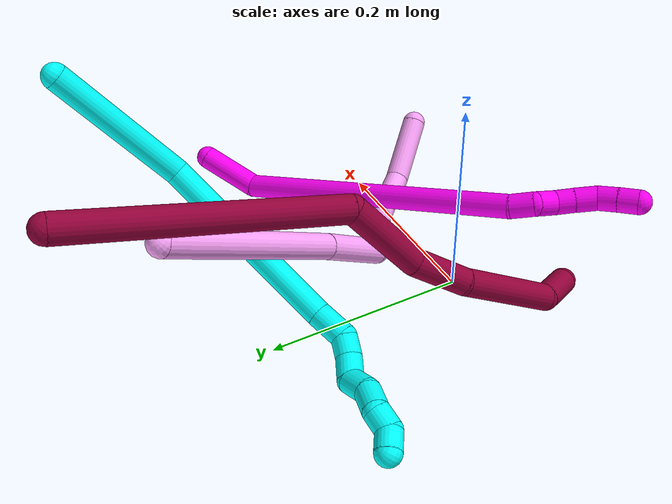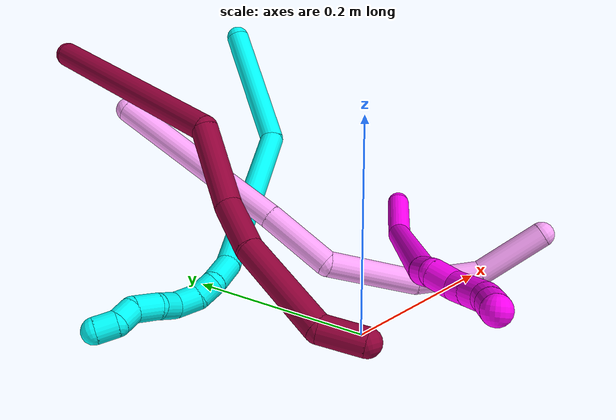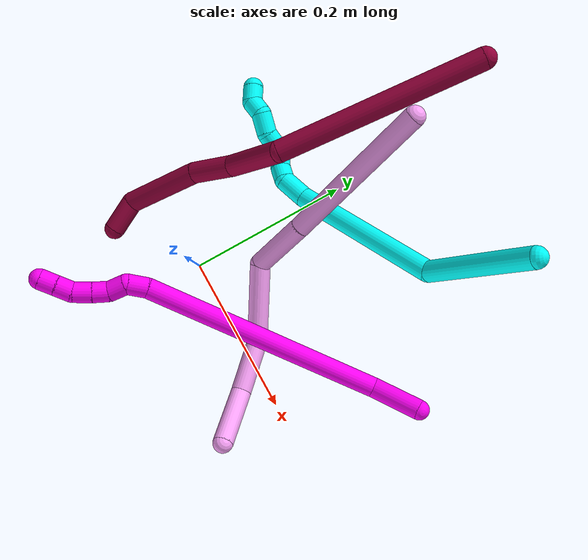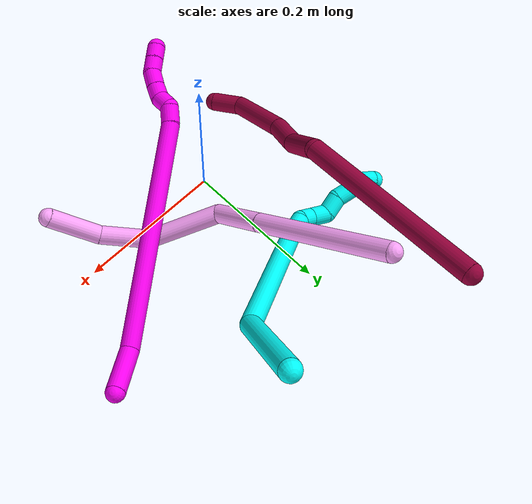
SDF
<sdf version="1.7">
 <world name="default">
  <model name="3">
   <static>0</static>
   <link name="3">
    <collision name="collision-cylinder-e_1_1_4">
     <pose>0.008273 0.009005 -0.068783 -3.01141 0.118693 -1.47828</pose>
     <geometry><cylinder><radius>0.0125</radius><length>0.139723</length></cylinder></geometry>
     <surface>
      <friction><ode><mu>1.16</mu><mu2>1.16</mu2><slip1>0</slip1><slip2>0</slip2></ode></friction>
      <contact><ode><kp>1e+06</kp><kd>1</kd><max_vel>0</max_vel><min_depth>0.001</min_depth></ode></contact>
     </surface>
    </collision>
    <visual name="visual-cylinder-e_1_1_4">
     <pose>0.008273 0.009005 -0.068783 -3.01141 0.118693 -1.47828</pose>
     <geometry><cylinder><radius>0.0125</radius><length>0.139723</length></cylinder></geometry>
     <material><ambient>0.003922 1 0.996078 1</ambient></material>
    </visual>
    <collision name="collision-cylinder-e_2_4_5">
     <pose>-0.031273 0.033772 -0.21838 -2.94898 -0.526154 2.45278</pose>
     <geometry><cylinder><radius>0.0125</radius><length>0.190429</length></cylinder></geometry>
     <surface>
      <friction><ode><mu>1.16</mu><mu2>1.16</mu2><slip1>0</slip1><slip2>0</slip2></ode></friction>
      <contact><ode><kp>1e+06</kp><kd>1</kd><max_vel>0</max_vel><min_depth>0.001</min_depth></ode></contact>
     </surface>
    </collision>
    <visual name="visual-cylinder-e_2_4_5">
     <pose>-0.031273 0.033772 -0.21838 -2.94898 -0.526154 2.45278</pose>
     <geometry><cylinder><radius>0.0125</radius><length>0.190429</length></cylinder></geometry>
     <material><ambient>0.003922 1 0.996078 1</ambient></material>
    </visual>
    <collision name="collision-cylinder-e_3_5_6">
     <pose>-0.091221 0.050382 -0.310335 -3.06555 -0.826438 2.96851</pose>
     <geometry><cylinder><radius>0.0125</radius><length>0.032986</length></cylinder></geometry>
     <surface>
      <friction><ode><mu>1.16</mu><mu2>1.16</mu2><slip1>0</slip1><slip2>0</slip2></ode></friction>
      <contact><ode><kp>1e+06</kp><kd>1</kd><max_vel>0</max_vel><min_depth>0.001</min_depth></ode></contact>
     </surface>
    </collision>
    <visual name="visual-cylinder-e_3_5_6">
     <pose>-0.091221 0.050382 -0.310335 -3.06555 -0.826438 2.96851</pose>
     <geometry><cylinder><radius>0.0125</radius><length>0.032986</length></cylinder></geometry>
     <material><ambient>0.003922 1 0.996078 1</ambient></material>
    </visual>
    <collision name="collision-cylinder-e_4_6_7">
     <pose>-0.109922 0.057169 -0.326323 -2.25522 -0.708622 1.324</pose>
     <geometry><cylinder><radius>0.0125</radius><length>0.020191</length></cylinder></geometry>
     <surface>
      <friction><ode><mu>1.16</mu><mu2>1.16</mu2><slip1>0</slip1><slip2>0</slip2></ode></friction>
      <contact><ode><kp>1e+06</kp><kd>1</kd><max_vel>0</max_vel><min_depth>0.001</min_depth></ode></contact>
     </surface>
    </collision>
    <visual name="visual-cylinder-e_4_6_7">
     <pose>-0.109922 0.057169 -0.326323 -2.25522 -0.708622 1.324</pose>
     <geometry><cylinder><radius>0.0125</radius><length>0.020191</length></cylinder></geometry>
     <material><ambient>0.003922 1 0.996078 1</ambient></material>
    </visual>
    <collision name="collision-cylinder-e_5_7_8">
     <pose>-0.126498 0.069593 -0.333157 -1.8683 -0.975064 1.24429</pose>
     <geometry><cylinder><radius>0.0125</radius><length>0.024176</length></cylinder></geometry>
     <surface>
      <friction><ode><mu>1.16</mu><mu2>1.16</mu2><slip1>0</slip1><slip2>0</slip2></ode></friction>
      <contact><ode><kp>1e+06</kp><kd>1</kd><max_vel>0</max_vel><min_depth>0.001</min_depth></ode></contact>
     </surface>
    </collision>
    <visual name="visual-cylinder-e_5_7_8">
     <pose>-0.126498 0.069593 -0.333157 -1.8683 -0.975064 1.24429</pose>
     <geometry><cylinder><radius>0.0125</radius><length>0.024176</length></cylinder></geometry>
     <material><ambient>0.003922 1 0.996078 1</ambient></material>
    </visual>
    <collision name="collision-cylinder-e_6_8_9">
     <pose>-0.14864 0.073526 -0.33824 2.45206 -1.25162 -2.21928</pose>
     <geometry><cylinder><radius>0.0125</radius><length>0.025565</length></cylinder></geometry>
     <surface>
      <friction><ode><mu>1.16</mu><mu2>1.16</mu2><slip1>0</slip1><slip2>0</slip2></ode></friction>
      <contact><ode><kp>1e+06</kp><kd>1</kd><max_vel>0</max_vel><min_depth>0.001</min_depth></ode></contact>
     </surface>
    </collision>
    <visual name="visual-cylinder-e_6_8_9">
     <pose>-0.14864 0.073526 -0.33824 2.45206 -1.25162 -2.21928</pose>
     <geometry><cylinder><radius>0.0125</radius><length>0.025565</length></cylinder></geometry>
     <material><ambient>0.003922 1 0.996078 1</ambient></material>
    </visual>
    <collision name="collision-cylinder-e_7_9_10">
     <pose>-0.173504 0.073571 -0.342838 -2.09556 -1.33925 1.88262</pose>
     <geometry><cylinder><radius>0.0125</radius><length>0.026151</length></cylinder></geometry>
     <surface>
      <friction><ode><mu>1.16</mu><mu2>1.16</mu2><slip1>0</slip1><slip2>0</slip2></ode></friction>
      <contact><ode><kp>1e+06</kp><kd>1</kd><max_vel>0</max_vel><min_depth>0.001</min_depth></ode></contact>
     </surface>
    </collision>
    <visual name="visual-cylinder-e_7_9_10">
     <pose>-0.173504 0.073571 -0.342838 -2.09556 -1.33925 1.88262</pose>
     <geometry><cylinder><radius>0.0125</radius><length>0.026151</length></cylinder></geometry>
     <material><ambient>0.003922 1 0.996078 1</ambient></material>
    </visual>
    <collision name="collision-cylinder-e_8_10_11">
     <pose>-0.193824 0.078748 -0.350456 -2.74228 -0.852582 2.30327</pose>
     <geometry><cylinder><radius>0.0125</radius><length>0.02017</length></cylinder></geometry>
     <surface>
      <friction><ode><mu>1.16</mu><mu2>1.16</mu2><slip1>0</slip1><slip2>0</slip2></ode></friction>
      <contact><ode><kp>1e+06</kp><kd>1</kd><max_vel>0</max_vel><min_depth>0.001</min_depth></ode></contact>
     </surface>
    </collision>
    <visual name="visual-cylinder-e_8_10_11">
     <pose>-0.193824 0.078748 -0.350456 -2.74228 -0.852582 2.30327</pose>
     <geometry><cylinder><radius>0.0125</radius><length>0.02017</length></cylinder></geometry>
     <material><ambient>0.003922 1 0.996078 1</ambient></material>
    </visual>
    <collision name="collision-cylinder-e_9_11_2">
     <pose>-0.209474 0.087702 -0.357382 -1.6975 -0.89755 1.00073</pose>
     <geometry><cylinder><radius>0.0125</radius><length>0.02061</length></cylinder></geometry>
     <surface>
      <friction><ode><mu>1.16</mu><mu2>1.16</mu2><slip1>0</slip1><slip2>0</slip2></ode></friction>
      <contact><ode><kp>1e+06</kp><kd>1</kd><max_vel>0</max_vel><min_depth>0.001</min_depth></ode></contact>
     </surface>
    </collision>
    <visual name="visual-cylinder-e_9_11_2">
     <pose>-0.209474 0.087702 -0.357382 -1.6975 -0.89755 1.00073</pose>
     <geometry><cylinder><radius>0.0125</radius><length>0.02061</length></cylinder></geometry>
     <material><ambient>0.003922 1 0.996078 1</ambient></material>
    </visual>
    <collision name="collision-sphere-2">
     <pose>-0.21753 0.094076 -0.358194 0 -0 0</pose>
     <geometry><sphere><radius>0.0125</radius></sphere></geometry>
     <surface>
      <friction><ode><mu>1.16</mu><mu2>1.16</mu2><slip1>0</slip1><slip2>0</slip2></ode></friction>
      <contact><ode><kp>1e+06</kp><kd>1</kd><max_vel>0</max_vel><min_depth>0.001</min_depth></ode></contact>
     </surface>
    </collision>
    <visual name="visual-sphere-2">
     <pose>-0.21753 0.094076 -0.358194 0 -0 0</pose>
     <geometry><sphere><radius>0.0125</radius></sphere></geometry>
     <material><ambient>0.003922 1 0.996078 1</ambient></material>
    </visual>
    <collision name="collision-sphere-11">
     <pose>-0.201418 0.081328 -0.35657 0 -0 0</pose>
     <geometry><sphere><radius>0.0125</radius></sphere></geometry>
     <surface>
      <friction><ode><mu>1.16</mu><mu2>1.16</mu2><slip1>0</slip1><slip2>0</slip2></ode></friction>
      <contact><ode><kp>1e+06</kp><kd>1</kd><max_vel>0</max_vel><min_depth>0.001</min_depth></ode></contact>
     </surface>
    </collision>
    <visual name="visual-sphere-11">
     <pose>-0.201418 0.081328 -0.35657 0 -0 0</pose>
     <geometry><sphere><radius>0.0125</radius></sphere></geometry>
     <material><ambient>0.003922 1 0.996078 1</ambient></material>
    </visual>
    <collision name="collision-sphere-10">
     <pose>-0.18623 0.076168 -0.344341 0 -0 0</pose>
     <geometry><sphere><radius>0.0125</radius></sphere></geometry>
     <surface>
      <friction><ode><mu>1.16</mu><mu2>1.16</mu2><slip1>0</slip1><slip2>0</slip2></ode></friction>
      <contact><ode><kp>1e+06</kp><kd>1</kd><max_vel>0</max_vel><min_depth>0.001</min_depth></ode></contact>
     </surface>
    </collision>
    <visual name="visual-sphere-10">
     <pose>-0.18623 0.076168 -0.344341 0 -0 0</pose>
     <geometry><sphere><radius>0.0125</radius></sphere></geometry>
     <material><ambient>0.003922 1 0.996078 1</ambient></material>
    </visual>
    <collision name="collision-sphere-9">
     <pose>-0.160777 0.070974 -0.341335 0 -0 0</pose>
     <geometry><sphere><radius>0.0125</radius></sphere></geometry>
     <surface>
      <friction><ode><mu>1.16</mu><mu2>1.16</mu2><slip1>0</slip1><slip2>0</slip2></ode></friction>
      <contact><ode><kp>1e+06</kp><kd>1</kd><max_vel>0</max_vel><min_depth>0.001</min_depth></ode></contact>
     </surface>
    </collision>
    <visual name="visual-sphere-9">
     <pose>-0.160777 0.070974 -0.341335 0 -0 0</pose>
     <geometry><sphere><radius>0.0125</radius></sphere></geometry>
     <material><ambient>0.003922 1 0.996078 1</ambient></material>
    </visual>
    <collision name="collision-sphere-4">
     <pose>0.016545 0.018011 -0.137566 0 -0 0</pose>
     <geometry><sphere><radius>0.0125</radius></sphere></geometry>
     <surface>
      <friction><ode><mu>1.16</mu><mu2>1.16</mu2><slip1>0</slip1><slip2>0</slip2></ode></friction>
      <contact><ode><kp>1e+06</kp><kd>1</kd><max_vel>0</max_vel><min_depth>0.001</min_depth></ode></contact>
     </surface>
    </collision>
    <visual name="visual-sphere-4">
     <pose>0.016545 0.018011 -0.137566 0 -0 0</pose>
     <geometry><sphere><radius>0.0125</radius></sphere></geometry>
     <material><ambient>0.003922 1 0.996078 1</ambient></material>
    </visual>
    <collision name="collision-sphere-1">
     <geometry><sphere><radius>0.0125</radius></sphere></geometry>
     <surface>
      <friction><ode><mu>1.16</mu><mu2>1.16</mu2><slip1>0</slip1><slip2>0</slip2></ode></friction>
      <contact><ode><kp>1e+06</kp><kd>1</kd><max_vel>0</max_vel><min_depth>0.001</min_depth></ode></contact>
     </surface>
    </collision>
    <visual name="visual-sphere-1">
     <geometry><sphere><radius>0.0125</radius></sphere></geometry>
     <material><ambient>0.003922 1 0.996078 1</ambient></material>
    </visual>
    <collision name="collision-sphere-8">
     <pose>-0.136503 0.076078 -0.335145 0 -0 0</pose>
     <geometry><sphere><radius>0.0125</radius></sphere></geometry>
     <surface>
      <friction><ode><mu>1.16</mu><mu2>1.16</mu2><slip1>0</slip1><slip2>0</slip2></ode></friction>
      <contact><ode><kp>1e+06</kp><kd>1</kd><max_vel>0</max_vel><min_depth>0.001</min_depth></ode></contact>
     </surface>
    </collision>
    <visual name="visual-sphere-8">
     <pose>-0.136503 0.076078 -0.335145 0 -0 0</pose>
     <geometry><sphere><radius>0.0125</radius></sphere></geometry>
     <material><ambient>0.003922 1 0.996078 1</ambient></material>
    </visual>
    <collision name="collision-sphere-5">
     <pose>-0.07909 0.049533 -0.299194 0 -0 0</pose>
     <geometry><sphere><radius>0.0125</radius></sphere></geometry>
     <surface>
      <friction><ode><mu>1.16</mu><mu2>1.16</mu2><slip1>0</slip1><slip2>0</slip2></ode></friction>
      <contact><ode><kp>1e+06</kp><kd>1</kd><max_vel>0</max_vel><min_depth>0.001</min_depth></ode></contact>
     </surface>
    </collision>
    <visual name="visual-sphere-5">
     <pose>-0.07909 0.049533 -0.299194 0 -0 0</pose>
     <geometry><sphere><radius>0.0125</radius></sphere></geometry>
     <material><ambient>0.003922 1 0.996078 1</ambient></material>
    </visual>
    <collision name="collision-sphere-6">
     <pose>-0.103352 0.051231 -0.321477 0 -0 0</pose>
     <geometry><sphere><radius>0.0125</radius></sphere></geometry>
     <surface>
      <friction><ode><mu>1.16</mu><mu2>1.16</mu2><slip1>0</slip1><slip2>0</slip2></ode></friction>
      <contact><ode><kp>1e+06</kp><kd>1</kd><max_vel>0</max_vel><min_depth>0.001</min_depth></ode></contact>
     </surface>
    </collision>
    <visual name="visual-sphere-6">
     <pose>-0.103352 0.051231 -0.321477 0 -0 0</pose>
     <geometry><sphere><radius>0.0125</radius></sphere></geometry>
     <material><ambient>0.003922 1 0.996078 1</ambient></material>
    </visual>
    <collision name="collision-sphere-7">
     <pose>-0.116492 0.063108 -0.331169 0 -0 0</pose>
     <geometry><sphere><radius>0.0125</radius></sphere></geometry>
     <surface>
      <friction><ode><mu>1.16</mu><mu2>1.16</mu2><slip1>0</slip1><slip2>0</slip2></ode></friction>
      <contact><ode><kp>1e+06</kp><kd>1</kd><max_vel>0</max_vel><min_depth>0.001</min_depth></ode></contact>
     </surface>
    </collision>
    <visual name="visual-sphere-7">
     <pose>-0.116492 0.063108 -0.331169 0 -0 0</pose>
     <geometry><sphere><radius>0.0125</radius></sphere></geometry>
     <material><ambient>0.003922 1 0.996078 1</ambient></material>
    </visual>
    <inertial>
     <pose>-0.0593 0.038775 -0.216246 0 -0 0</pose>
     <mass>0.5</mass>
     <inertia>
      <ixx>-0.000293</ixx>
      <ixy>0</ixy>
      <ixz>0</ixz>
      <iyy>0.000574</iyy>
      <iyz>0</iyz>
      <izz>0.00012</izz>
     </inertia>
    </inertial>
   </link>
   <pose>0.176592 0.310527 0.232691 -0.819703 0.345943 -0.172584</pose>
  </model>
  <model name="4">
   <static>0</static>
   <link name="4">
    <collision name="collision-cylinder-e_1_1_4">
     <pose>0.006502 -0.042603 -0.08413 2.67284 0.068844 0.286471</pose>
     <geometry><cylinder><radius>0.0125</radius><length>0.189052</length></cylinder></geometry>
     <surface>
      <friction><ode><mu>1.16</mu><mu2>1.16</mu2><slip1>0</slip1><slip2>0</slip2></ode></friction>
      <contact><ode><kp>1e+06</kp><kd>1</kd><max_vel>0</max_vel><min_depth>0.001</min_depth></ode></contact>
     </surface>
    </collision>
    <visual name="visual-cylinder-e_1_1_4">
     <pose>0.006502 -0.042603 -0.08413 2.67284 0.068844 0.286471</pose>
     <geometry><cylinder><radius>0.0125</radius><length>0.189052</length></cylinder></geometry>
     <material><ambient>1 0.65098 0.996078 1</ambient></material>
    </visual>
    <collision name="collision-cylinder-e_2_4_5">
     <pose>0.014242 -0.10056 -0.201349 2.70715 0.033899 0.153309</pose>
     <geometry><cylinder><radius>0.0125</radius><length>0.072997</length></cylinder></geometry>
     <surface>
      <friction><ode><mu>1.16</mu><mu2>1.16</mu2><slip1>0</slip1><slip2>0</slip2></ode></friction>
      <contact><ode><kp>1e+06</kp><kd>1</kd><max_vel>0</max_vel><min_depth>0.001</min_depth></ode></contact>
     </surface>
    </collision>
    <visual name="visual-cylinder-e_2_4_5">
     <pose>0.014242 -0.10056 -0.201349 2.70715 0.033899 0.153309</pose>
     <geometry><cylinder><radius>0.0125</radius><length>0.072997</length></cylinder></geometry>
     <material><ambient>1 0.65098 0.996078 1</ambient></material>
    </visual>
    <collision name="collision-cylinder-e_3_5_6">
     <pose>0.051663 -0.128394 -0.266616 2.77161 0.809017 2.31745</pose>
     <geometry><cylinder><radius>0.0125</radius><length>0.100011</length></cylinder></geometry>
     <surface>
      <friction><ode><mu>1.16</mu><mu2>1.16</mu2><slip1>0</slip1><slip2>0</slip2></ode></friction>
      <contact><ode><kp>1e+06</kp><kd>1</kd><max_vel>0</max_vel><min_depth>0.001</min_depth></ode></contact>
     </surface>
    </collision>
    <visual name="visual-cylinder-e_3_5_6">
     <pose>0.051663 -0.128394 -0.266616 2.77161 0.809017 2.31745</pose>
     <geometry><cylinder><radius>0.0125</radius><length>0.100011</length></cylinder></geometry>
     <material><ambient>1 0.65098 0.996078 1</ambient></material>
    </visual>
    <collision name="collision-cylinder-e_4_6_7">
     <pose>0.108528 -0.162781 -0.311581 2.0991 0.684023 1.10996</pose>
     <geometry><cylinder><radius>0.0125</radius><length>0.065454</length></cylinder></geometry>
     <surface>
      <friction><ode><mu>1.16</mu><mu2>1.16</mu2><slip1>0</slip1><slip2>0</slip2></ode></friction>
      <contact><ode><kp>1e+06</kp><kd>1</kd><max_vel>0</max_vel><min_depth>0.001</min_depth></ode></contact>
     </surface>
    </collision>
    <visual name="visual-cylinder-e_4_6_7">
     <pose>0.108528 -0.162781 -0.311581 2.0991 0.684023 1.10996</pose>
     <geometry><cylinder><radius>0.0125</radius><length>0.065454</length></cylinder></geometry>
     <material><ambient>1 0.65098 0.996078 1</ambient></material>
    </visual>
    <collision name="collision-cylinder-e_5_7_2">
     <pose>0.150074 -0.214273 -0.322669 1.51348 0.613454 0.581209</pose>
     <geometry><cylinder><radius>0.0125</radius><length>0.072486</length></cylinder></geometry>
     <surface>
      <friction><ode><mu>1.16</mu><mu2>1.16</mu2><slip1>0</slip1><slip2>0</slip2></ode></friction>
      <contact><ode><kp>1e+06</kp><kd>1</kd><max_vel>0</max_vel><min_depth>0.001</min_depth></ode></contact>
     </surface>
    </collision>
    <visual name="visual-cylinder-e_5_7_2">
     <pose>0.150074 -0.214273 -0.322669 1.51348 0.613454 0.581209</pose>
     <geometry><cylinder><radius>0.0125</radius><length>0.072486</length></cylinder></geometry>
     <material><ambient>1 0.65098 0.996078 1</ambient></material>
    </visual>
    <collision name="collision-sphere-2">
     <pose>0.170939 -0.243859 -0.320971 0 -0 0</pose>
     <geometry><sphere><radius>0.0125</radius></sphere></geometry>
     <surface>
      <friction><ode><mu>1.16</mu><mu2>1.16</mu2><slip1>0</slip1><slip2>0</slip2></ode></friction>
      <contact><ode><kp>1e+06</kp><kd>1</kd><max_vel>0</max_vel><min_depth>0.001</min_depth></ode></contact>
     </surface>
    </collision>
    <visual name="visual-sphere-2">
     <pose>0.170939 -0.243859 -0.320971 0 -0 0</pose>
     <geometry><sphere><radius>0.0125</radius></sphere></geometry>
     <material><ambient>1 0.65098 0.996078 1</ambient></material>
    </visual>
    <collision name="collision-sphere-7">
     <pose>0.129209 -0.184688 -0.324366 0 -0 0</pose>
     <geometry><sphere><radius>0.0125</radius></sphere></geometry>
     <surface>
      <friction><ode><mu>1.16</mu><mu2>1.16</mu2><slip1>0</slip1><slip2>0</slip2></ode></friction>
      <contact><ode><kp>1e+06</kp><kd>1</kd><max_vel>0</max_vel><min_depth>0.001</min_depth></ode></contact>
     </surface>
    </collision>
    <visual name="visual-sphere-7">
     <pose>0.129209 -0.184688 -0.324366 0 -0 0</pose>
     <geometry><sphere><radius>0.0125</radius></sphere></geometry>
     <material><ambient>1 0.65098 0.996078 1</ambient></material>
    </visual>
    <collision name="collision-sphere-6">
     <pose>0.087848 -0.140874 -0.298795 0 -0 0</pose>
     <geometry><sphere><radius>0.0125</radius></sphere></geometry>
     <surface>
      <friction><ode><mu>1.16</mu><mu2>1.16</mu2><slip1>0</slip1><slip2>0</slip2></ode></friction>
      <contact><ode><kp>1e+06</kp><kd>1</kd><max_vel>0</max_vel><min_depth>0.001</min_depth></ode></contact>
     </surface>
    </collision>
    <visual name="visual-sphere-6">
     <pose>0.087848 -0.140874 -0.298795 0 -0 0</pose>
     <geometry><sphere><radius>0.0125</radius></sphere></geometry>
     <material><ambient>1 0.65098 0.996078 1</ambient></material>
    </visual>
    <collision name="collision-sphere-5">
     <pose>0.015479 -0.115914 -0.234437 0 -0 0</pose>
     <geometry><sphere><radius>0.0125</radius></sphere></geometry>
     <surface>
      <friction><ode><mu>1.16</mu><mu2>1.16</mu2><slip1>0</slip1><slip2>0</slip2></ode></friction>
      <contact><ode><kp>1e+06</kp><kd>1</kd><max_vel>0</max_vel><min_depth>0.001</min_depth></ode></contact>
     </surface>
    </collision>
    <visual name="visual-sphere-5">
     <pose>0.015479 -0.115914 -0.234437 0 -0 0</pose>
     <geometry><sphere><radius>0.0125</radius></sphere></geometry>
     <material><ambient>1 0.65098 0.996078 1</ambient></material>
    </visual>
    <collision name="collision-sphere-1">
     <geometry><sphere><radius>0.0125</radius></sphere></geometry>
     <surface>
      <friction><ode><mu>1.16</mu><mu2>1.16</mu2><slip1>0</slip1><slip2>0</slip2></ode></friction>
      <contact><ode><kp>1e+06</kp><kd>1</kd><max_vel>0</max_vel><min_depth>0.001</min_depth></ode></contact>
     </surface>
    </collision>
    <visual name="visual-sphere-1">
     <geometry><sphere><radius>0.0125</radius></sphere></geometry>
     <material><ambient>1 0.65098 0.996078 1</ambient></material>
    </visual>
    <collision name="collision-sphere-4">
     <pose>0.013005 -0.085206 -0.16826 0 -0 0</pose>
     <geometry><sphere><radius>0.0125</radius></sphere></geometry>
     <surface>
      <friction><ode><mu>1.16</mu><mu2>1.16</mu2><slip1>0</slip1><slip2>0</slip2></ode></friction>
      <contact><ode><kp>1e+06</kp><kd>1</kd><max_vel>0</max_vel><min_depth>0.001</min_depth></ode></contact>
     </surface>
    </collision>
    <visual name="visual-sphere-4">
     <pose>0.013005 -0.085206 -0.16826 0 -0 0</pose>
     <geometry><sphere><radius>0.0125</radius></sphere></geometry>
     <material><ambient>1 0.65098 0.996078 1</ambient></material>
    </visual>
    <inertial>
     <pose>0.050835 -0.108844 -0.202101 0 -0 0</pose>
     <mass>0.5</mass>
     <inertia>
      <ixx>0.00083</ixx>
      <ixy>0</ixy>
      <ixz>0</ixz>
      <iyy>-0.000198</iyy>
      <iyz>0</iyz>
      <izz>0.000174</izz>
     </inertia>
    </inertial>
   </link>
   <pose>-0.013932 0.288502 0.174155 -0.565318 -0.141741 0.075194</pose>
  </model>
  <model name="8">
   <static>0</static>
   <link name="8">
    <collision name="collision-cylinder-e_1_1_4">
     <pose>-0.00323 -0.080974 -0.084131 2.37532 -0.027651 -0.06858</pose>
     <geometry><cylinder><radius>0.0125</radius><length>0.233626</length></cylinder></geometry>
     <surface>
      <friction><ode><mu>1.16</mu><mu2>1.16</mu2><slip1>0</slip1><slip2>0</slip2></ode></friction>
      <contact><ode><kp>1e+06</kp><kd>1</kd><max_vel>0</max_vel><min_depth>0.001</min_depth></ode></contact>
     </surface>
    </collision>
    <visual name="visual-cylinder-e_1_1_4">
     <pose>-0.00323 -0.080974 -0.084131 2.37532 -0.027651 -0.06858</pose>
     <geometry><cylinder><radius>0.0125</radius><length>0.233626</length></cylinder></geometry>
     <material><ambient>0.584314 0 0.227451 1</ambient></material>
    </visual>
    <collision name="collision-cylinder-e_2_4_5">
     <pose>-0.009811 -0.164855 -0.207667 3.06794 -0.08463 -1.70943</pose>
     <geometry><cylinder><radius>0.0125</radius><length>0.079306</length></cylinder></geometry>
     <surface>
      <friction><ode><mu>1.16</mu><mu2>1.16</mu2><slip1>0</slip1><slip2>0</slip2></ode></friction>
      <contact><ode><kp>1e+06</kp><kd>1</kd><max_vel>0</max_vel><min_depth>0.001</min_depth></ode></contact>
     </surface>
    </collision>
    <visual name="visual-cylinder-e_2_4_5">
     <pose>-0.009811 -0.164855 -0.207667 3.06794 -0.08463 -1.70943</pose>
     <geometry><cylinder><radius>0.0125</radius><length>0.079306</length></cylinder></geometry>
     <material><ambient>0.584314 0 0.227451 1</ambient></material>
    </visual>
    <collision name="collision-cylinder-e_3_5_6">
     <pose>-0.018931 -0.177335 -0.270658 2.75605 -0.222824 -1.04089</pose>
     <geometry><cylinder><radius>0.0125</radius><length>0.052202</length></cylinder></geometry>
     <surface>
      <friction><ode><mu>1.16</mu><mu2>1.16</mu2><slip1>0</slip1><slip2>0</slip2></ode></friction>
      <contact><ode><kp>1e+06</kp><kd>1</kd><max_vel>0</max_vel><min_depth>0.001</min_depth></ode></contact>
     </surface>
    </collision>
    <visual name="visual-cylinder-e_3_5_6">
     <pose>-0.018931 -0.177335 -0.270658 2.75605 -0.222824 -1.04089</pose>
     <geometry><cylinder><radius>0.0125</radius><length>0.052202</length></cylinder></geometry>
     <material><ambient>0.584314 0 0.227451 1</ambient></material>
    </visual>
    <collision name="collision-cylinder-e_4_6_7">
     <pose>-0.025042 -0.209199 -0.336434 2.6555 -0.007197 -0.029023</pose>
     <geometry><cylinder><radius>0.0125</radius><length>0.095434</length></cylinder></geometry>
     <surface>
      <friction><ode><mu>1.16</mu><mu2>1.16</mu2><slip1>0</slip1><slip2>0</slip2></ode></friction>
      <contact><ode><kp>1e+06</kp><kd>1</kd><max_vel>0</max_vel><min_depth>0.001</min_depth></ode></contact>
     </surface>
    </collision>
    <visual name="visual-cylinder-e_4_6_7">
     <pose>-0.025042 -0.209199 -0.336434 2.6555 -0.007197 -0.029023</pose>
     <geometry><cylinder><radius>0.0125</radius><length>0.095434</length></cylinder></geometry>
     <material><ambient>0.584314 0 0.227451 1</ambient></material>
    </visual>
    <collision name="collision-cylinder-e_5_7_2">
     <pose>-0.015613 -0.244506 -0.389749 2.2781 0.518603 1.04481</pose>
     <geometry><cylinder><radius>0.0125</radius><length>0.039432</length></cylinder></geometry>
     <surface>
      <friction><ode><mu>1.16</mu><mu2>1.16</mu2><slip1>0</slip1><slip2>0</slip2></ode></friction>
      <contact><ode><kp>1e+06</kp><kd>1</kd><max_vel>0</max_vel><min_depth>0.001</min_depth></ode></contact>
     </surface>
    </collision>
    <visual name="visual-cylinder-e_5_7_2">
     <pose>-0.015613 -0.244506 -0.389749 2.2781 0.518603 1.04481</pose>
     <geometry><cylinder><radius>0.0125</radius><length>0.039432</length></cylinder></geometry>
     <material><ambient>0.584314 0 0.227451 1</ambient></material>
    </visual>
    <collision name="collision-sphere-2">
     <pose>-0.00584 -0.257522 -0.400876 0 -0 0</pose>
     <geometry><sphere><radius>0.0125</radius></sphere></geometry>
     <surface>
      <friction><ode><mu>1.16</mu><mu2>1.16</mu2><slip1>0</slip1><slip2>0</slip2></ode></friction>
      <contact><ode><kp>1e+06</kp><kd>1</kd><max_vel>0</max_vel><min_depth>0.001</min_depth></ode></contact>
     </surface>
    </collision>
    <visual name="visual-sphere-2">
     <pose>-0.00584 -0.257522 -0.400876 0 -0 0</pose>
     <geometry><sphere><radius>0.0125</radius></sphere></geometry>
     <material><ambient>0.584314 0 0.227451 1</ambient></material>
    </visual>
    <collision name="collision-sphere-7">
     <pose>-0.025385 -0.23149 -0.378623 0 -0 0</pose>
     <geometry><sphere><radius>0.0125</radius></sphere></geometry>
     <surface>
      <friction><ode><mu>1.16</mu><mu2>1.16</mu2><slip1>0</slip1><slip2>0</slip2></ode></friction>
      <contact><ode><kp>1e+06</kp><kd>1</kd><max_vel>0</max_vel><min_depth>0.001</min_depth></ode></contact>
     </surface>
    </collision>
    <visual name="visual-sphere-7">
     <pose>-0.025385 -0.23149 -0.378623 0 -0 0</pose>
     <geometry><sphere><radius>0.0125</radius></sphere></geometry>
     <material><ambient>0.584314 0 0.227451 1</ambient></material>
    </visual>
    <collision name="collision-sphere-6">
     <pose>-0.024699 -0.186908 -0.294245 0 -0 0</pose>
     <geometry><sphere><radius>0.0125</radius></sphere></geometry>
     <surface>
      <friction><ode><mu>1.16</mu><mu2>1.16</mu2><slip1>0</slip1><slip2>0</slip2></ode></friction>
      <contact><ode><kp>1e+06</kp><kd>1</kd><max_vel>0</max_vel><min_depth>0.001</min_depth></ode></contact>
     </surface>
    </collision>
    <visual name="visual-sphere-6">
     <pose>-0.024699 -0.186908 -0.294245 0 -0 0</pose>
     <geometry><sphere><radius>0.0125</radius></sphere></geometry>
     <material><ambient>0.584314 0 0.227451 1</ambient></material>
    </visual>
    <collision name="collision-sphere-5">
     <pose>-0.013163 -0.167762 -0.247071 0 -0 0</pose>
     <geometry><sphere><radius>0.0125</radius></sphere></geometry>
     <surface>
      <friction><ode><mu>1.16</mu><mu2>1.16</mu2><slip1>0</slip1><slip2>0</slip2></ode></friction>
      <contact><ode><kp>1e+06</kp><kd>1</kd><max_vel>0</max_vel><min_depth>0.001</min_depth></ode></contact>
     </surface>
    </collision>
    <visual name="visual-sphere-5">
     <pose>-0.013163 -0.167762 -0.247071 0 -0 0</pose>
     <geometry><sphere><radius>0.0125</radius></sphere></geometry>
     <material><ambient>0.584314 0 0.227451 1</ambient></material>
    </visual>
    <collision name="collision-sphere-1">
     <geometry><sphere><radius>0.0125</radius></sphere></geometry>
     <surface>
      <friction><ode><mu>1.16</mu><mu2>1.16</mu2><slip1>0</slip1><slip2>0</slip2></ode></friction>
      <contact><ode><kp>1e+06</kp><kd>1</kd><max_vel>0</max_vel><min_depth>0.001</min_depth></ode></contact>
     </surface>
    </collision>
    <visual name="visual-sphere-1">
     <geometry><sphere><radius>0.0125</radius></sphere></geometry>
     <material><ambient>0.584314 0 0.227451 1</ambient></material>
    </visual>
    <collision name="collision-sphere-4">
     <pose>-0.006459 -0.161947 -0.168263 0 -0 0</pose>
     <geometry><sphere><radius>0.0125</radius></sphere></geometry>
     <surface>
      <friction><ode><mu>1.16</mu><mu2>1.16</mu2><slip1>0</slip1><slip2>0</slip2></ode></friction>
      <contact><ode><kp>1e+06</kp><kd>1</kd><max_vel>0</max_vel><min_depth>0.001</min_depth></ode></contact>
     </surface>
    </collision>
    <visual name="visual-sphere-4">
     <pose>-0.006459 -0.161947 -0.168263 0 -0 0</pose>
     <geometry><sphere><radius>0.0125</radius></sphere></geometry>
     <material><ambient>0.584314 0 0.227451 1</ambient></material>
    </visual>
    <inertial>
     <pose>-0.011053 -0.14171 -0.195459 0 -0 0</pose>
     <mass>0.5</mass>
     <inertia>
      <ixx>0.001022</ixx>
      <ixy>0</ixy>
      <ixz>0</ixz>
      <iyy>-0.000982</iyy>
      <iyz>0</iyz>
      <izz>0.000794</izz>
     </inertia>
    </inertial>
   </link>
   <pose>-0.025339 0.368331 0.226045 -0.590076 0.191626 -0.043592</pose>
  </model>
  <model name="10">
   <static>0</static>
   <link name="10">
    <collision name="collision-cylinder-e_1_1_4">
     <pose>-0.015867 -0.020231 -0.018494 2.31138 -0.524747 -1.09458</pose>
     <geometry><cylinder><radius>0.0125</radius><length>0.063344</length></cylinder></geometry>
     <surface>
      <friction><ode><mu>1.16</mu><mu2>1.16</mu2><slip1>0</slip1><slip2>0</slip2></ode></friction>
      <contact><ode><kp>1e+06</kp><kd>1</kd><max_vel>0</max_vel><min_depth>0.001</min_depth></ode></contact>
     </surface>
    </collision>
    <visual name="visual-cylinder-e_1_1_4">
     <pose>-0.015867 -0.020231 -0.018494 2.31138 -0.524747 -1.09458</pose>
     <geometry><cylinder><radius>0.0125</radius><length>0.063344</length></cylinder></geometry>
     <material><ambient>1 0 0.964706 1</ambient></material>
    </visual>
    <collision name="collision-cylinder-e_2_4_5">
     <pose>-0.128865 -0.157663 -0.047566 1.6608 -0.690033 -0.749408</pose>
     <geometry><cylinder><radius>0.0125</radius><length>0.305169</length></cylinder></geometry>
     <surface>
      <friction><ode><mu>1.16</mu><mu2>1.16</mu2><slip1>0</slip1><slip2>0</slip2></ode></friction>
      <contact><ode><kp>1e+06</kp><kd>1</kd><max_vel>0</max_vel><min_depth>0.001</min_depth></ode></contact>
     </surface>
    </collision>
    <visual name="visual-cylinder-e_2_4_5">
     <pose>-0.128865 -0.157663 -0.047566 1.6608 -0.690033 -0.749408</pose>
     <geometry><cylinder><radius>0.0125</radius><length>0.305169</length></cylinder></geometry>
     <material><ambient>1 0 0.964706 1</ambient></material>
    </visual>
    <collision name="collision-cylinder-e_3_5_6">
     <pose>-0.231624 -0.286029 -0.057967 1.55506 -0.466973 -0.459936</pose>
     <geometry><cylinder><radius>0.0125</radius><length>0.025012</length></cylinder></geometry>
     <surface>
      <friction><ode><mu>1.16</mu><mu2>1.16</mu2><slip1>0</slip1><slip2>0</slip2></ode></friction>
      <contact><ode><kp>1e+06</kp><kd>1</kd><max_vel>0</max_vel><min_depth>0.001</min_depth></ode></contact>
     </surface>
    </collision>
    <visual name="visual-cylinder-e_3_5_6">
     <pose>-0.231624 -0.286029 -0.057967 1.55506 -0.466973 -0.459936</pose>
     <geometry><cylinder><radius>0.0125</radius><length>0.025012</length></cylinder></geometry>
     <material><ambient>1 0 0.964706 1</ambient></material>
    </visual>
    <collision name="collision-cylinder-e_4_6_7">
     <pose>-0.235096 -0.307777 -0.06138 1.89782 0.190778 0.265408</pose>
     <geometry><cylinder><radius>0.0125</radius><length>0.022762</length></cylinder></geometry>
     <surface>
      <friction><ode><mu>1.16</mu><mu2>1.16</mu2><slip1>0</slip1><slip2>0</slip2></ode></friction>
      <contact><ode><kp>1e+06</kp><kd>1</kd><max_vel>0</max_vel><min_depth>0.001</min_depth></ode></contact>
     </surface>
    </collision>
    <visual name="visual-cylinder-e_4_6_7">
     <pose>-0.235096 -0.307777 -0.06138 1.89782 0.190778 0.265408</pose>
     <geometry><cylinder><radius>0.0125</radius><length>0.022762</length></cylinder></geometry>
     <material><ambient>1 0 0.964706 1</ambient></material>
    </visual>
    <collision name="collision-cylinder-e_5_7_8">
     <pose>-0.234965 -0.328111 -0.065951 1.67104 -0.203959 -0.225329</pose>
     <geometry><cylinder><radius>0.0125</radius><length>0.020016</length></cylinder></geometry>
     <surface>
      <friction><ode><mu>1.16</mu><mu2>1.16</mu2><slip1>0</slip1><slip2>0</slip2></ode></friction>
      <contact><ode><kp>1e+06</kp><kd>1</kd><max_vel>0</max_vel><min_depth>0.001</min_depth></ode></contact>
     </surface>
    </collision>
    <visual name="visual-cylinder-e_5_7_8">
     <pose>-0.234965 -0.328111 -0.065951 1.67104 -0.203959 -0.225329</pose>
     <geometry><cylinder><radius>0.0125</radius><length>0.020016</length></cylinder></geometry>
     <material><ambient>1 0 0.964706 1</ambient></material>
    </visual>
    <collision name="collision-cylinder-e_6_8_9">
     <pose>-0.24017 -0.348866 -0.06788 1.65673 -0.280169 -0.304968</pose>
     <geometry><cylinder><radius>0.0125</radius><length>0.022985</length></cylinder></geometry>
     <surface>
      <friction><ode><mu>1.16</mu><mu2>1.16</mu2><slip1>0</slip1><slip2>0</slip2></ode></friction>
      <contact><ode><kp>1e+06</kp><kd>1</kd><max_vel>0</max_vel><min_depth>0.001</min_depth></ode></contact>
     </surface>
    </collision>
    <visual name="visual-cylinder-e_6_8_9">
     <pose>-0.24017 -0.348866 -0.06788 1.65673 -0.280169 -0.304968</pose>
     <geometry><cylinder><radius>0.0125</radius><length>0.022985</length></cylinder></geometry>
     <material><ambient>1 0 0.964706 1</ambient></material>
    </visual>
    <collision name="collision-cylinder-e_7_9_10">
     <pose>-0.24959 -0.367902 -0.06983 1.69497 -0.656855 -0.736662</pose>
     <geometry><cylinder><radius>0.0125</radius><length>0.020443</length></cylinder></geometry>
     <surface>
      <friction><ode><mu>1.16</mu><mu2>1.16</mu2><slip1>0</slip1><slip2>0</slip2></ode></friction>
      <contact><ode><kp>1e+06</kp><kd>1</kd><max_vel>0</max_vel><min_depth>0.001</min_depth></ode></contact>
     </surface>
    </collision>
    <visual name="visual-cylinder-e_7_9_10">
     <pose>-0.24959 -0.367902 -0.06983 1.69497 -0.656855 -0.736662</pose>
     <geometry><cylinder><radius>0.0125</radius><length>0.020443</length></cylinder></geometry>
     <material><ambient>1 0 0.964706 1</ambient></material>
    </visual>
    <collision name="collision-cylinder-e_8_10_2">
     <pose>-0.261928 -0.383907 -0.072238 1.74532 -0.645433 -0.758469</pose>
     <geometry><cylinder><radius>0.0125</radius><length>0.020269</length></cylinder></geometry>
     <surface>
      <friction><ode><mu>1.16</mu><mu2>1.16</mu2><slip1>0</slip1><slip2>0</slip2></ode></friction>
      <contact><ode><kp>1e+06</kp><kd>1</kd><max_vel>0</max_vel><min_depth>0.001</min_depth></ode></contact>
     </surface>
    </collision>
    <visual name="visual-cylinder-e_8_10_2">
     <pose>-0.261928 -0.383907 -0.072238 1.74532 -0.645433 -0.758469</pose>
     <geometry><cylinder><radius>0.0125</radius><length>0.020269</length></cylinder></geometry>
     <material><ambient>1 0 0.964706 1</ambient></material>
    </visual>
    <collision name="collision-sphere-2">
     <pose>-0.268024 -0.391879 -0.073644 0 -0 0</pose>
     <geometry><sphere><radius>0.0125</radius></sphere></geometry>
     <surface>
      <friction><ode><mu>1.16</mu><mu2>1.16</mu2><slip1>0</slip1><slip2>0</slip2></ode></friction>
      <contact><ode><kp>1e+06</kp><kd>1</kd><max_vel>0</max_vel><min_depth>0.001</min_depth></ode></contact>
     </surface>
    </collision>
    <visual name="visual-sphere-2">
     <pose>-0.268024 -0.391879 -0.073644 0 -0 0</pose>
     <geometry><sphere><radius>0.0125</radius></sphere></geometry>
     <material><ambient>1 0 0.964706 1</ambient></material>
    </visual>
    <collision name="collision-sphere-10">
     <pose>-0.255831 -0.375934 -0.070832 0 -0 0</pose>
     <geometry><sphere><radius>0.0125</radius></sphere></geometry>
     <surface>
      <friction><ode><mu>1.16</mu><mu2>1.16</mu2><slip1>0</slip1><slip2>0</slip2></ode></friction>
      <contact><ode><kp>1e+06</kp><kd>1</kd><max_vel>0</max_vel><min_depth>0.001</min_depth></ode></contact>
     </surface>
    </collision>
    <visual name="visual-sphere-10">
     <pose>-0.255831 -0.375934 -0.070832 0 -0 0</pose>
     <geometry><sphere><radius>0.0125</radius></sphere></geometry>
     <material><ambient>1 0 0.964706 1</ambient></material>
    </visual>
    <collision name="collision-sphere-9">
     <pose>-0.243348 -0.35987 -0.068827 0 -0 0</pose>
     <geometry><sphere><radius>0.0125</radius></sphere></geometry>
     <surface>
      <friction><ode><mu>1.16</mu><mu2>1.16</mu2><slip1>0</slip1><slip2>0</slip2></ode></friction>
      <contact><ode><kp>1e+06</kp><kd>1</kd><max_vel>0</max_vel><min_depth>0.001</min_depth></ode></contact>
     </surface>
    </collision>
    <visual name="visual-sphere-9">
     <pose>-0.243348 -0.35987 -0.068827 0 -0 0</pose>
     <geometry><sphere><radius>0.0125</radius></sphere></geometry>
     <material><ambient>1 0 0.964706 1</ambient></material>
    </visual>
    <collision name="collision-sphere-4">
     <pose>-0.031735 -0.040462 -0.036989 0 -0 0</pose>
     <geometry><sphere><radius>0.0125</radius></sphere></geometry>
     <surface>
      <friction><ode><mu>1.16</mu><mu2>1.16</mu2><slip1>0</slip1><slip2>0</slip2></ode></friction>
      <contact><ode><kp>1e+06</kp><kd>1</kd><max_vel>0</max_vel><min_depth>0.001</min_depth></ode></contact>
     </surface>
    </collision>
    <visual name="visual-sphere-4">
     <pose>-0.031735 -0.040462 -0.036989 0 -0 0</pose>
     <geometry><sphere><radius>0.0125</radius></sphere></geometry>
     <material><ambient>1 0 0.964706 1</ambient></material>
    </visual>
    <collision name="collision-sphere-1">
     <geometry><sphere><radius>0.0125</radius></sphere></geometry>
     <surface>
      <friction><ode><mu>1.16</mu><mu2>1.16</mu2><slip1>0</slip1><slip2>0</slip2></ode></friction>
      <contact><ode><kp>1e+06</kp><kd>1</kd><max_vel>0</max_vel><min_depth>0.001</min_depth></ode></contact>
     </surface>
    </collision>
    <visual name="visual-sphere-1">
     <geometry><sphere><radius>0.0125</radius></sphere></geometry>
     <material><ambient>1 0 0.964706 1</ambient></material>
    </visual>
    <collision name="collision-sphere-8">
     <pose>-0.236992 -0.337862 -0.066932 0 -0 0</pose>
     <geometry><sphere><radius>0.0125</radius></sphere></geometry>
     <surface>
      <friction><ode><mu>1.16</mu><mu2>1.16</mu2><slip1>0</slip1><slip2>0</slip2></ode></friction>
      <contact><ode><kp>1e+06</kp><kd>1</kd><max_vel>0</max_vel><min_depth>0.001</min_depth></ode></contact>
     </surface>
    </collision>
    <visual name="visual-sphere-8">
     <pose>-0.236992 -0.337862 -0.066932 0 -0 0</pose>
     <geometry><sphere><radius>0.0125</radius></sphere></geometry>
     <material><ambient>1 0 0.964706 1</ambient></material>
    </visual>
    <collision name="collision-sphere-5">
     <pose>-0.225994 -0.274864 -0.058142 0 -0 0</pose>
     <geometry><sphere><radius>0.0125</radius></sphere></geometry>
     <surface>
      <friction><ode><mu>1.16</mu><mu2>1.16</mu2><slip1>0</slip1><slip2>0</slip2></ode></friction>
      <contact><ode><kp>1e+06</kp><kd>1</kd><max_vel>0</max_vel><min_depth>0.001</min_depth></ode></contact>
     </surface>
    </collision>
    <visual name="visual-sphere-5">
     <pose>-0.225994 -0.274864 -0.058142 0 -0 0</pose>
     <geometry><sphere><radius>0.0125</radius></sphere></geometry>
     <material><ambient>1 0 0.964706 1</ambient></material>
    </visual>
    <collision name="collision-sphere-6">
     <pose>-0.237254 -0.297195 -0.057791 0 -0 0</pose>
     <geometry><sphere><radius>0.0125</radius></sphere></geometry>
     <surface>
      <friction><ode><mu>1.16</mu><mu2>1.16</mu2><slip1>0</slip1><slip2>0</slip2></ode></friction>
      <contact><ode><kp>1e+06</kp><kd>1</kd><max_vel>0</max_vel><min_depth>0.001</min_depth></ode></contact>
     </surface>
    </collision>
    <visual name="visual-sphere-6">
     <pose>-0.237254 -0.297195 -0.057791 0 -0 0</pose>
     <geometry><sphere><radius>0.0125</radius></sphere></geometry>
     <material><ambient>1 0 0.964706 1</ambient></material>
    </visual>
    <collision name="collision-sphere-7">
     <pose>-0.232938 -0.318359 -0.06497 0 -0 0</pose>
     <geometry><sphere><radius>0.0125</radius></sphere></geometry>
     <surface>
      <friction><ode><mu>1.16</mu><mu2>1.16</mu2><slip1>0</slip1><slip2>0</slip2></ode></friction>
      <contact><ode><kp>1e+06</kp><kd>1</kd><max_vel>0</max_vel><min_depth>0.001</min_depth></ode></contact>
     </surface>
    </collision>
    <visual name="visual-sphere-7">
     <pose>-0.232938 -0.318359 -0.06497 0 -0 0</pose>
     <geometry><sphere><radius>0.0125</radius></sphere></geometry>
     <material><ambient>1 0 0.964706 1</ambient></material>
    </visual>
    <inertial>
     <pose>-0.14422 -0.186887 -0.048612 0 -0 0</pose>
     <mass>0.5</mass>
     <inertia>
      <ixx>6.9e-05</ixx>
      <ixy>0</ixy>
      <ixz>0</ixz>
      <iyy>-0.00043</iyy>
      <iyz>0</iyz>
      <izz>0.003377</izz>
     </inertia>
    </inertial>
   </link>
   <pose>0.28698 0.151128 0.033728 -0.158258 0.244563 -0.260635</pose>
  </model>
 </world>
</sdf>
